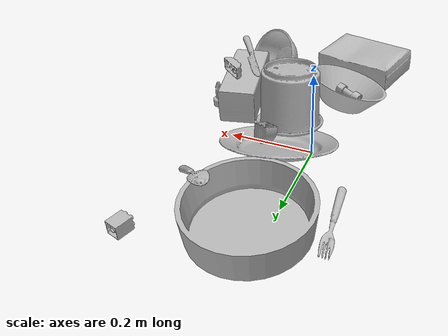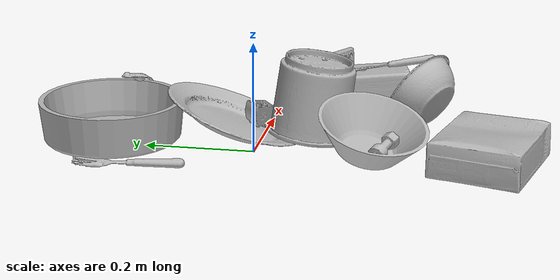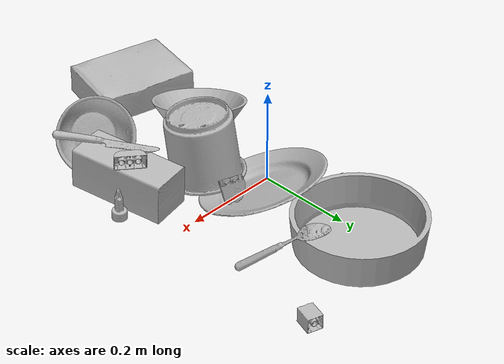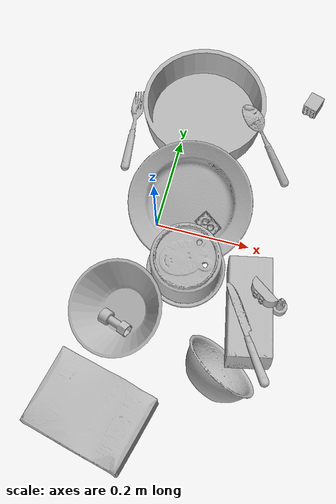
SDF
<sdf version="1.4">
  <world name="default">
    <light name="light1" type="point">
      <pose>0 0 1 0 0 0</pose>
      <diffuse>3 3 3 1</diffuse>
      <specular>3 3 3 1</specular>
    </light>
    <light name="light2" type="point">
      <pose>0 0.5 2 0 0 0</pose>
      <diffuse>1 1 1 1</diffuse>
      <specular>1 1 1 1</specular>
    </light>
    <light name="light3" type="point">
      <pose>0 0.5 2 0 0 0</pose>
      <diffuse>3 3 3 1</diffuse>
      <specular>3 3 3 1</specular>
    </light>
    <scene>
      <ambient>0.7 0.7 0.7</ambient>
    </scene>
    <model name="plate1">
      <link name="link_plate1">
        <collision name="default">
          <geometry>
            <mesh>
              <uri>model://pan_tefal/collision_meshes/collision.obj</uri>
              <scale>1.0 1.0 1.0</scale>
            </mesh>
          </geometry>
          <surface>
            <friction>
              <ode>
                <mu>0.5</mu>
                <mu2>0.5</mu2>
              </ode>
            </friction>
          <contact>
        <ode>
            <max_vel>0</max_vel>
            <min_depth>0.0001</min_depth>
            <kp>1e8</kp>
        </ode>
    </contact></surface>
        </collision>
        <visual name="default">
          <geometry>
            <mesh>
              <uri>model://pan_tefal/visual_meshes/visual.dae</uri>
              <scale>1.0 1.0 1.0</scale>
            </mesh>
          </geometry>
        </visual>
        <inertial>
          <mass>1.083925485610962</mass>
          <pose>-0.00018002053548116237 3.279013617429882e-05 -0.00851493701338768 0.000819031166138591 -0.00033013701589440335 -0.33186472787035126</pose>
          <inertia>
            <ixx>0.0074822875</ixx>
            <iyy>0.0075305253</iyy>
            <izz>0.013773448</izz>
            <ixy>0</ixy>
            <ixz>0</ixz>
            <iyz>0</iyz>
          </inertia>
        </inertial>
      </link>
      <pose>0.03320157155394554 0.2718428373336792 0.03798247501254082 -0.00040178767736199464 -0.0003821968514974615 2.2135320480399296</pose>
    </model>
    <model name="plate2">
      <link name="link_plate2">
        <collision name="default">
          <geometry>
            <mesh>
              <uri>model://plate/collision_meshes/collision.obj</uri>
              <scale>1.0 1.0 1.0</scale>
            </mesh>
          </geometry>
          <surface>
            <friction>
              <ode>
                <mu>0.5</mu>
                <mu2>0.5</mu2>
              </ode>
            </friction>
          <contact>
        <ode>
            <max_vel>0</max_vel>
            <min_depth>0.0001</min_depth>
            <kp>1e8</kp>
        </ode>
    </contact></surface>
        </collision>
        <visual name="default">
          <geometry>
            <mesh>
              <uri>model://plate/visual_meshes/visual.dae</uri>
              <scale>1.0 1.0 1.0</scale>
            </mesh>
          </geometry>
        </visual>
        <inertial>
          <mass>0.26740342378616333</mass>
          <pose>-0.00060446304269135 0.00027825793949887156 -0.0010561994276940823 0.0022187903743134635 -0.0032254779444460427 0.4526079808055429</pose>
          <inertia>
            <ixx>0.0012509191</ixx>
            <iyy>0.0012389544</iyy>
            <izz>0.00244661</izz>
            <ixy>0</ixy>
            <ixz>0</ixz>
            <iyz>0</iyz>
          </inertia>
        </inertial>
      </link>
      <pose>0.06003786623477936 0.05012515187263489 0.04096098616719246 0.146885577976588 0.32990090221474955 -0.9042401811292627</pose>
    </model>
    <model name="bowl1">
      <link name="link_bowl1">
        <collision name="default">
          <geometry>
            <mesh>
              <uri>model://bowl/collision_meshes/collision.obj</uri>
              <scale>1.0 1.0 1.0</scale>
            </mesh>
          </geometry>
          <surface>
            <friction>
              <ode>
                <mu>0.5</mu>
                <mu2>0.5</mu2>
              </ode>
            </friction>
          <contact>
        <ode>
            <max_vel>0</max_vel>
            <min_depth>0.0001</min_depth>
            <kp>1e8</kp>
        </ode>
    </contact></surface>
        </collision>
        <visual name="default">
          <geometry>
            <mesh>
              <uri>model://bowl/visual_meshes/visual.dae</uri>
              <scale>1.0 1.0 1.0</scale>
            </mesh>
          </geometry>
        </visual>
        <inertial>
          <mass>0.062040042132139206</mass>
          <pose>0.00020445157133508474 -0.001030211104080081 -0.0008042659028433263 -0.01576411046463803 0.014546752923574583 0.7140383763158871</pose>
          <inertia>
            <ixx>0.00014251085</ixx>
            <iyy>0.0001393266</iyy>
            <izz>0.00023975229</izz>
            <ixy>0</ixy>
            <ixz>0</ixz>
            <iyz>0</iyz>
          </inertia>
        </inertial>
      </link>
      <pose>0.1957988440990448 -0.29071924090385437 0.059406645596027374 0.8706180953105553 -0.7346957377796328 3.0916104463886276</pose>
    </model>
    <model name="bowl2">
      <link name="link_bowl2">
        <collision name="default">
          <geometry>
            <mesh>
              <uri>model://bowl_a/collision_meshes/collision.obj</uri>
              <scale>1.0 1.0 1.0</scale>
            </mesh>
          </geometry>
          <surface>
            <friction>
              <ode>
                <mu>0.5</mu>
                <mu2>0.5</mu2>
              </ode>
            </friction>
          <contact>
        <ode>
            <max_vel>0</max_vel>
            <min_depth>0.0001</min_depth>
            <kp>1e8</kp>
        </ode>
    </contact></surface>
        </collision>
        <visual name="default">
          <geometry>
            <mesh>
              <uri>model://bowl_a/visual_meshes/visual.dae</uri>
              <scale>1.0 1.0 1.0</scale>
            </mesh>
          </geometry>
        </visual>
        <inertial>
          <mass>0.2882154881954193</mass>
          <pose>0.00027867534663528204 4.731079752673395e-05 -0.0013765293406322598 -0.0009805311525578244 -0.0010938248781945461 -0.19124031319294812</pose>
          <inertia>
            <ixx>0.00082056265</ixx>
            <iyy>0.0008256004</iyy>
            <izz>0.001459402</izz>
            <ixy>0</ixy>
            <ixz>0</ixz>
            <iyz>0</iyz>
          </inertia>
        </inertial>
      </link>
      <pose>-0.01663232408463955 -0.2099364995956421 0.04530958831310272 0.17968875712014326 0.26282059033038097 -1.7812271670112565</pose>
    </model>
    <model name="silverware1">
      <link name="link_silverware1">
        <collision name="default">
          <geometry>
            <mesh>
              <uri>model://fork/collision_meshes/collision.obj</uri>
              <scale>1.0 1.0 1.0</scale>
            </mesh>
          </geometry>
          <surface>
            <friction>
              <ode>
                <mu>0.5</mu>
                <mu2>0.5</mu2>
              </ode>
            </friction>
          <contact>
        <ode>
            <max_vel>0</max_vel>
            <min_depth>0.0001</min_depth>
            <kp>1e8</kp>
        </ode>
    </contact></surface>
        </collision>
        <visual name="default">
          <geometry>
            <mesh>
              <uri>model://fork/visual_meshes/visual.dae</uri>
              <scale>1.0 1.0 1.0</scale>
            </mesh>
          </geometry>
        </visual>
        <inertial>
          <mass>0.01398836076259613</mass>
          <pose>-0.02957003563642502 0.00046588244731538 0.0003218861238565296 -0.013550934691899108 -0.010977833142804767 0.01445389655901604</pose>
          <inertia>
            <ixx>4.903713e-07</ixx>
            <iyy>3.6519592e-05</iyy>
            <izz>3.673893e-05</izz>
            <ixy>0</ixy>
            <ixz>0</ixz>
            <iyz>0</iyz>
          </inertia>
        </inertial>
      </link>
      <pose>-0.11063649505376816 0.19950726628303528 0.005708260461688042 -0.18097359152407225 0.024949843284018773 1.6626074791728327</pose>
    </model>
    <model name="box1">
      <link name="link_box1">
        <collision name="default">
          <geometry>
            <mesh>
              <uri>model://cracker_box/collision_meshes/collision.obj</uri>
              <scale>1.0 1.0 1.0</scale>
            </mesh>
          </geometry>
          <surface>
            <friction>
              <ode>
                <mu>0.5</mu>
                <mu2>0.5</mu2>
              </ode>
            </friction>
          <contact>
        <ode>
            <max_vel>0</max_vel>
            <min_depth>0.0001</min_depth>
            <kp>1e8</kp>
        </ode>
    </contact></surface>
        </collision>
        <visual name="default">
          <geometry>
            <mesh>
              <uri>model://cracker_box/visual_meshes/visual.dae</uri>
              <scale>1.0 1.0 1.0</scale>
            </mesh>
          </geometry>
        </visual>
        <inertial>
          <mass>3.3038947582244873</mass>
          <pose>0.0009464139584451914 0.00025434247800149024 -0.0017029535956680775 -0.00031620753779881404 -0.011106489600569465 0.002546794535826719</pose>
          <inertia>
            <ixx>0.008403633</ixx>
            <iyy>0.013876048</iyy>
            <izz>0.019802397</izz>
            <ixy>0</ixy>
            <ixz>0</ixz>
            <iyz>0</iyz>
          </inertia>
        </inertial>
      </link>
      <pose>-0.01569441519677639 -0.41495203971862793 0.03648180887103081 -0.01178814611552828 -0.007367164512183769 2.897803036186901</pose>
    </model>
    <model name="box2">
      <link name="link_box2">
        <collision name="default">
          <geometry>
            <mesh>
              <uri>model://wood_block/collision_meshes/collision.obj</uri>
              <scale>1.0 1.0 1.0</scale>
            </mesh>
          </geometry>
          <surface>
            <friction>
              <ode>
                <mu>0.5</mu>
                <mu2>0.5</mu2>
              </ode>
            </friction>
          <contact>
        <ode>
            <max_vel>0</max_vel>
            <min_depth>0.0001</min_depth>
            <kp>1e8</kp>
        </ode>
    </contact></surface>
        </collision>
        <visual name="default">
          <geometry>
            <mesh>
              <uri>model://wood_block/visual_meshes/visual.dae</uri>
              <scale>1.0 1.0 1.0</scale>
            </mesh>
          </geometry>
        </visual>
        <inertial>
          <mass>1.8317598104476929</mass>
          <pose>-5.813315510749817e-06 -0.000570809468626976 0.0002640858292579651 -0.05220774405774941 -0.005192695034541599 -0.006861378043904631</pose>
          <inertia>
            <ixx>0.0024511719</ixx>
            <iyy>0.0077432534</iyy>
            <izz>0.007714289</izz>
            <ixy>0</ixy>
            <ixz>0</ixz>
            <iyz>0</iyz>
          </inertia>
        </inertial>
      </link>
      <pose>0.23310419917106628 -0.1512143760919571 0.04963977634906769 -1.5708364043210072 -0.05211633744881735 -1.3634533481956677</pose>
    </model>
    <model name="cup1">
      <link name="link_cup1">
        <collision name="default">
          <geometry>
            <mesh>
              <uri>model://f_cups/collision_meshes/collision.obj</uri>
              <scale>2.0 2.0 2.0</scale>
            </mesh>
          </geometry>
          <surface>
            <friction>
              <ode>
                <mu>0.5</mu>
                <mu2>0.5</mu2>
              </ode>
            </friction>
          <contact>
        <ode>
            <max_vel>0</max_vel>
            <min_depth>0.0001</min_depth>
            <kp>1e8</kp>
        </ode>
    </contact></surface>
        </collision>
        <visual name="default">
          <geometry>
            <mesh>
              <uri>model://f_cups/visual_meshes/visual.dae</uri>
              <scale>2.0 2.0 2.0</scale>
            </mesh>
          </geometry>
        </visual>
        <inertial>
          <mass>0.8281989693641663</mass>
          <pose>-0.006342937704175711 -0.0012480166042223573 -0.007311076857149601 0.7862278170542254 -0.2607923358756499 -0.18237381375543787</pose>
          <inertia>
            <ixx>0.003114117</ixx>
            <iyy>0.0032667436</iyy>
            <izz>0.0034007723</izz>
            <ixy>0</ixy>
            <ixz>0</ixz>
            <iyz>0</iyz>
          </inertia>
        </inertial>
      </link>
      <pose>0.0886305719614029 -0.09373508393764496 0.08267945051193237 -3.028939935995925 0.0891442326448055 -0.43571207026767034</pose>
    </model>
    <model name="silverware2">
      <link name="link_silverware2">
        <collision name="default">
          <geometry>
            <mesh>
              <uri>model://knife/collision_meshes/collision.obj</uri>
              <scale>1.0 1.0 1.0</scale>
            </mesh>
          </geometry>
          <surface>
            <friction>
              <ode>
                <mu>0.5</mu>
                <mu2>0.5</mu2>
              </ode>
            </friction>
          <contact>
        <ode>
            <max_vel>0</max_vel>
            <min_depth>0.0001</min_depth>
            <kp>1e8</kp>
        </ode>
    </contact></surface>
        </collision>
        <visual name="default">
          <geometry>
            <mesh>
              <uri>model://knife/visual_meshes/visual.dae</uri>
              <scale>1.0 1.0 1.0</scale>
            </mesh>
          </geometry>
        </visual>
        <inertial>
          <mass>0.033610157668590546</mass>
          <pose>-0.02378525771200657 0.0015275131445378065 5.0620201363926753e-05 0.07305356746503441 0.01724842347870745 -0.0074098216508425</pose>
          <inertia>
            <ixx>9.539925e-07</ixx>
            <iyy>0.00012912478</iyy>
            <izz>0.00012943202</izz>
            <ixy>0</ixy>
            <ixz>0</ixz>
            <iyz>0</iyz>
          </inertia>
        </inertial>
      </link>
      <pose>0.23892228305339813 -0.20643648505210876 0.10476972907781601 0.2013351428978519 0.03082837292038181 2.1365399836458283</pose>
    </model>
    <model name="silverware3">
      <link name="link_silverware3">
        <collision name="default">
          <geometry>
            <mesh>
              <uri>model://spoon/collision_meshes/collision.obj</uri>
              <scale>1.0 1.0 1.0</scale>
            </mesh>
          </geometry>
          <surface>
            <friction>
              <ode>
                <mu>0.5</mu>
                <mu2>0.5</mu2>
              </ode>
            </friction>
          <contact>
        <ode>
            <max_vel>0</max_vel>
            <min_depth>0.0001</min_depth>
            <kp>1e8</kp>
        </ode>
    </contact></surface>
        </collision>
        <visual name="default">
          <geometry>
            <mesh>
              <uri>model://spoon/visual_meshes/visual.dae</uri>
              <scale>1.0 1.0 1.0</scale>
            </mesh>
          </geometry>
        </visual>
        <inertial>
          <mass>0.03036251850426197</mass>
          <pose>-0.005526314955204725 -0.0016034168656915426 -0.0007271655485965312 0.035217258575681115 -0.03906584346489495 0.006150616147242728</pose>
          <inertia>
            <ixx>1.6888126e-06</ixx>
            <iyy>0.00011552838</iyy>
            <izz>0.00011636122</izz>
            <ixy>0</ixy>
            <ixz>0</ixz>
            <iyz>0</iyz>
          </inertia>
        </inertial>
      </link>
      <pose>0.18594077229499817 0.21679337322711945 0.05374401807785034 -3.030283915221232 -0.556681567961162 2.3750848472975474</pose>
    </model>
    <model name="toy1">
      <link name="link_toy1">
        <collision name="default">
          <geometry>
            <mesh>
              <uri>model://d_lego_duplo/collision_meshes/collision.obj</uri>
              <scale>1.0 1.0 1.0</scale>
            </mesh>
          </geometry>
          <surface>
            <friction>
              <ode>
                <mu>0.5</mu>
                <mu2>0.5</mu2>
              </ode>
            </friction>
          <contact>
        <ode>
            <max_vel>0</max_vel>
            <min_depth>0.0001</min_depth>
            <kp>1e8</kp>
        </ode>
    </contact></surface>
        </collision>
        <visual name="default">
          <geometry>
            <mesh>
              <uri>model://d_lego_duplo/visual_meshes/visual.dae</uri>
              <scale>1.0 1.0 1.0</scale>
            </mesh>
          </geometry>
        </visual>
        <inertial>
          <mass>0.05888136848807335</mass>
          <pose>0.00283056334592402 0.00016366125782951713 0.0008589810458943248 0.0801088994423302 -0.3835518637869403 0.0010296847698221781</pose>
          <inertia>
            <ixx>1.1398561e-05</ixx>
            <iyy>1.6177655e-05</iyy>
            <izz>1.5601077e-05</izz>
            <ixy>0</ixy>
            <ixz>0</ixz>
            <iyz>0</iyz>
          </inertia>
        </inertial>
      </link>
      <pose>0.10766183584928513 0.014263264834880829 0.03610043600201607 -2.88846337356921 0.20713255948308543 -0.5593394754682726</pose>
    </model>
    <model name="toy2">
      <link name="link_toy2">
        <collision name="default">
          <geometry>
            <mesh>
              <uri>model://d_toy_airplane/collision_meshes/collision.obj</uri>
              <scale>1.0 1.0 1.0</scale>
            </mesh>
          </geometry>
          <surface>
            <friction>
              <ode>
                <mu>0.5</mu>
                <mu2>0.5</mu2>
              </ode>
            </friction>
          <contact>
        <ode>
            <max_vel>0</max_vel>
            <min_depth>0.0001</min_depth>
            <kp>1e8</kp>
        </ode>
    </contact></surface>
        </collision>
        <visual name="default">
          <geometry>
            <mesh>
              <uri>model://d_toy_airplane/visual_meshes/visual.dae</uri>
              <scale>1.0 1.0 1.0</scale>
            </mesh>
          </geometry>
        </visual>
        <inertial>
          <mass>0.019283337518572807</mass>
          <pose>9.410297934664413e-05 -5.809335198136978e-05 -0.011728096753358841 0.00026677547083937895 0.00467899750463603 0.5194224971352938</pose>
          <inertia>
            <ixx>5.7807692e-06</ixx>
            <iyy>5.78513e-06</iyy>
            <izz>1.7452522e-06</izz>
            <ixy>0</ixy>
            <ixz>0</ixz>
            <iyz>0</iyz>
          </inertia>
        </inertial>
      </link>
      <pose>0.2911757826805115 -0.11329106241464615 0.03333902359008789 -3.8004389080193354e-05 -7.400601546719948e-05 -2.050302606897795</pose>
    </model>
    <model name="toy3">
      <link name="link_toy3">
        <collision name="default">
          <geometry>
            <mesh>
              <uri>model://b_lego_duplo/collision_meshes/collision.obj</uri>
              <scale>1.0 1.0 1.0</scale>
            </mesh>
          </geometry>
          <surface>
            <friction>
              <ode>
                <mu>0.5</mu>
                <mu2>0.5</mu2>
              </ode>
            </friction>
          <contact>
        <ode>
            <max_vel>0</max_vel>
            <min_depth>0.0001</min_depth>
            <kp>1e8</kp>
        </ode>
    </contact></surface>
        </collision>
        <visual name="default">
          <geometry>
            <mesh>
              <uri>model://b_lego_duplo/visual_meshes/visual.dae</uri>
              <scale>1.0 1.0 1.0</scale>
            </mesh>
          </geometry>
        </visual>
        <inertial>
          <mass>0.03460631147027016</mass>
          <pose>-0.00011053022171836346 -9.15238524612505e-06 0.0019294291269034147 -0.037494934713503944 -0.026353982766830427 0.45190023703794546</pose>
          <inertia>
            <ixx>7.082442e-06</ixx>
            <iyy>7.1300533e-06</iyy>
            <izz>6.310225e-06</izz>
            <ixy>0</ixy>
            <ixz>0</ixz>
            <iyz>0</iyz>
          </inertia>
        </inertial>
      </link>
      <pose>0.26090025901794434 0.35669809579849243 0.016180744394659996 0.042357986858973164 -1.5623859908156013 1.2334411315996665</pose>
    </model>
    <model name="toy4">
      <link name="link_toy4">
        <collision name="default">
          <geometry>
            <mesh>
              <uri>model://c_toy_airplane/collision_meshes/collision.obj</uri>
              <scale>1.0 1.0 1.0</scale>
            </mesh>
          </geometry>
          <surface>
            <friction>
              <ode>
                <mu>0.5</mu>
                <mu2>0.5</mu2>
              </ode>
            </friction>
          <contact>
        <ode>
            <max_vel>0</max_vel>
            <min_depth>0.0001</min_depth>
            <kp>1e8</kp>
        </ode>
    </contact></surface>
        </collision>
        <visual name="default">
          <geometry>
            <mesh>
              <uri>model://c_toy_airplane/visual_meshes/visual.dae</uri>
              <scale>1.0 1.0 1.0</scale>
            </mesh>
          </geometry>
        </visual>
        <inertial>
          <mass>0.03008922003209591</mass>
          <pose>-0.00023024248366709799 -4.429292062013701e-07 -0.006080532446503639 -0.006192764609865116 -0.016797726061543002 0.7654936540566961</pose>
          <inertia>
            <ixx>1.3816358e-05</ixx>
            <iyy>1.3777365e-05</iyy>
            <izz>3.2438072e-06</izz>
            <ixy>0</ixy>
            <ixz>0</ixz>
            <iyz>0</iyz>
          </inertia>
        </inertial>
      </link>
      <pose>-0.01973092555999756 -0.23441503942012787 0.02968515455722809 1.095410770965688 1.1206993873164492 0.7711179420403363</pose>
    </model>
    <model name="toy5">
      <link name="link_toy5">
        <collision name="default">
          <geometry>
            <mesh>
              <uri>model://a_lego_duplo/collision_meshes/collision.obj</uri>
              <scale>1.0 1.0 1.0</scale>
            </mesh>
          </geometry>
          <surface>
            <friction>
              <ode>
                <mu>0.5</mu>
                <mu2>0.5</mu2>
              </ode>
            </friction>
          <contact>
        <ode>
            <max_vel>0</max_vel>
            <min_depth>0.0001</min_depth>
            <kp>1e8</kp>
        </ode>
    </contact></surface>
        </collision>
        <visual name="default">
          <geometry>
            <mesh>
              <uri>model://a_lego_duplo/visual_meshes/visual.dae</uri>
              <scale>1.0 1.0 1.0</scale>
            </mesh>
          </geometry>
        </visual>
        <inertial>
          <mass>0.02472195029258728</mass>
          <pose>-0.00011337580508552492 0.00018517558055464178 0.0003692609316203743 -0.014116968053030856 -0.00012565531185804749 6.140757465531037e-05</pose>
          <inertia>
            <ixx>3.1695524e-06</ixx>
            <iyy>7.100487e-06</iyy>
            <izz>8.795534e-06</izz>
            <ixy>0</ixy>
            <ixz>0</ixz>
            <iyz>0</iyz>
          </inertia>
        </inertial>
      </link>
      <pose>0.24784855544567108 -0.12652261555194855 0.11046775430440903 -1.5321803479106735 0.043405775272760044 2.5263311417275376</pose>
    </model>
  <physics type="ode">
      <max_contacts>50</max_contacts>
      <ode>
        <solver>
          <type>quick</type>
          <iters>75</iters>
        </solver>
        <constraints>
          <contact_max_correcting_vel>0</contact_max_correcting_vel>
          <contact_surface_layer>0</contact_surface_layer>
        </constraints>
      </ode>
    </physics></world>
</sdf>
